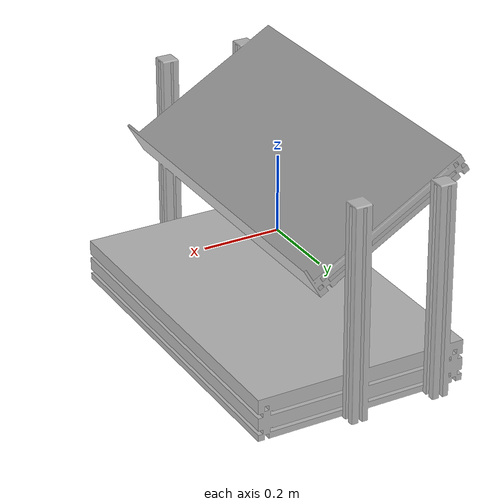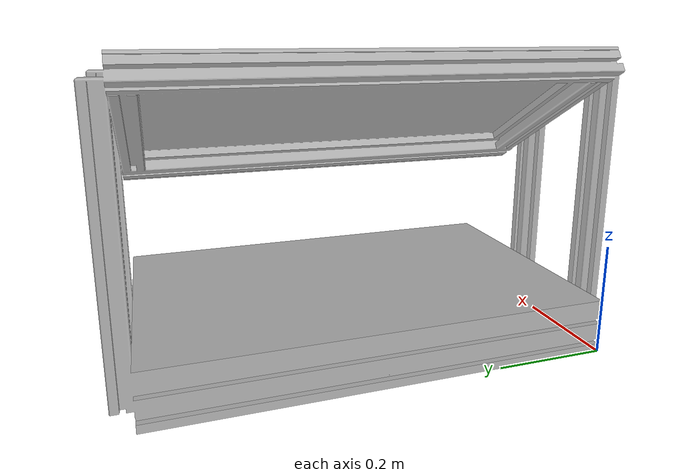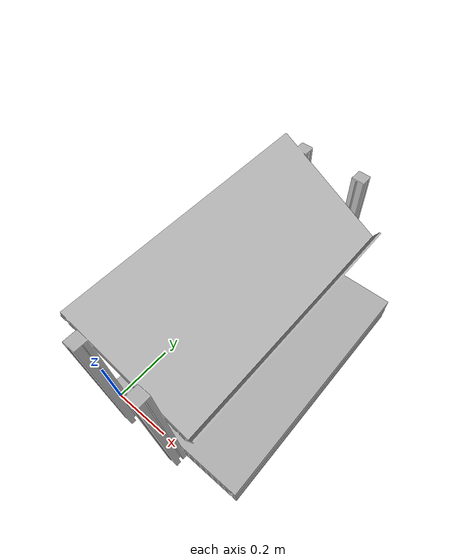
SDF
<?xml version="1.0" ?>
<sdf version="1.3">
  <model name="shelf_assembly">
    <static>true</static>
    <link name="link">
      <pose>0 0 0 0 0 0</pose>
      <collision name="collision">
        <geometry>
          <mesh>
            <uri>model://shelf_assembly/meshes/shelf_assembly.dae</uri>
          </mesh>
        </geometry>
      </collision>
      <visual name="visual">
        <geometry>
          <mesh>
            <uri>model://shelf_assembly/meshes/shelf_assembly.dae</uri>
          </mesh>
        </geometry>
      </visual>
    </link>
  </model>
</sdf>
